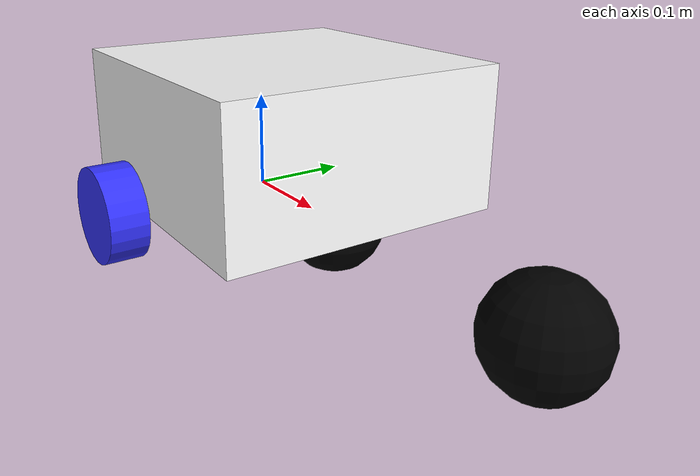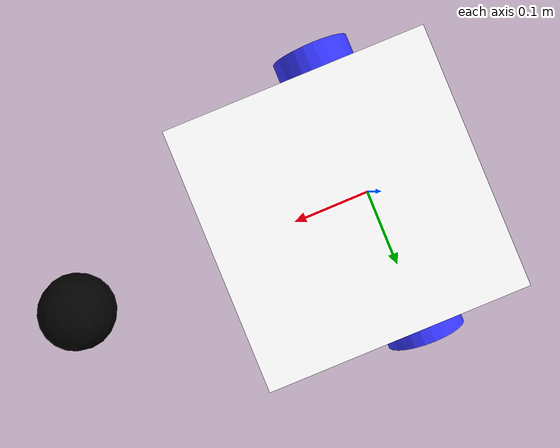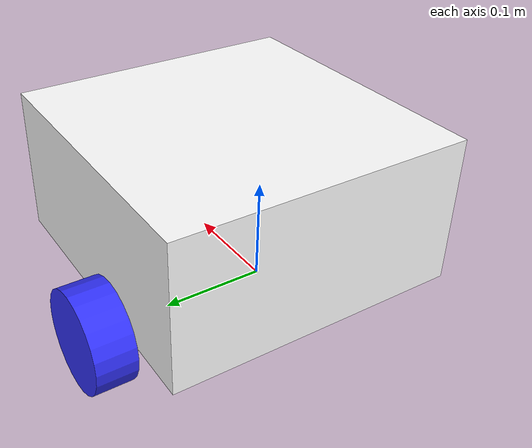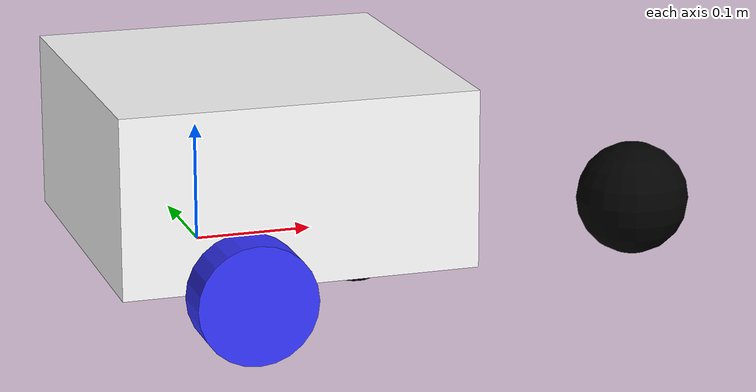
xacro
<?xml version="1.0"?>
<robot xmlns:xacro="http://www.ros.org/wiki/xacro">
    <xacro:include filename="inertial_macros.xacro" />

    <material name="white">
        <color rgba="1 1 1 1" />
    </material>
    <material name="orange">
        <color rgba="1 0.3 0.1 1" />
    </material>
    <material name="blue">
        <color rgba="0.2 0.2 1 1" />
    </material>
    <material name="black">
        <color rgba="0 0 0 1" />
    </material>

    <!-- BASE LINK -->

    <link name="base_link">

    </link>

    <!-- CHASSIS LINK -->

    <joint name="chassis_joint" type="fixed">
        <parent link="base_link" />
        <child link="chassis" />
        <origin xyz="-0.1 0 0" />
    </joint>

    <link name="chassis">
        <visual>
            <origin xyz="0.15 0 0.075" />
            <geometry>
                <box size="0.3 0.3 0.15" />
            </geometry>
            <material name="white" />
        </visual>
        <collision>
            <origin xyz="0.15 0 0.075" />
            <geometry>
                <box size="0.3 0.3 0.15" />
            </geometry>
        </collision>
        <xacro:inertial_box mass="0.5" x="0.3" y="0.3" z="0.15">
            <origin xyz="0.15 0 0.075" rpy="0 0 0" />
        </xacro:inertial_box>
    </link>

    <!-- LEFT WHEEL LINK -->
    <joint name="left_wheel_joint" type="continuous">
        <parent link="base_link" />
        <child link="left_wheel" />
        <origin xyz="0 0.175 0" rpy="-${pi/2} 0 0" />
        <axis xyz="0 0 1" />
    </joint>

    <link name="left_wheel">
        <visual>
            <geometry>
                <cylinder radius="0.05" length="0.04" />
            </geometry>
            <material name="blue" />
        </visual>
        <collision>
            <geometry>
                <cylinder radius="0.05" length="0.04" />
            </geometry>
        </collision>
        <xacro:inertial_cylinder mass="0.1" radius="0.05" length="0.04">
            <origin xyz="0 0 0" rpy="0 0 0" />
        </xacro:inertial_cylinder>
    </link>

    <!-- RIGHT WHEEL LINK -->
    <joint name="right_wheel_joint" type="continuous">
        <parent link="base_link" />
        <child link="right_wheel" />
        <origin xyz="0 -0.175 0" rpy="${pi/2} 0 0" />
        <axis xyz="0 0 -1" />
    </joint>

    <link name="right_wheel">
        <visual>
            <geometry>
                <cylinder radius="0.05" length="0.04" />
            </geometry>
            <material name="blue" />
        </visual>
        <collision>
            <geometry>
                <cylinder radius="0.05" length="0.04" />
            </geometry>
        </collision>
        <xacro:inertial_cylinder mass="0.1" radius="0.05" length="0.04">
            <origin xyz="0 0 0" rpy="0 0 0" />
        </xacro:inertial_cylinder>
    </link>

    <!-- CASTER WHEEL LINK -->
    <joint name="caster_wheel_joint" type="fixed">
        <parent link="chassis" />
        <child link="caster_wheel" />
        <origin xyz="0.24 0 0" />
    </joint>

    <link name="caster_wheel">
        <visual>
            <geometry>
                <sphere radius="0.05" />
            </geometry>
            <material name="black" />
        </visual>
        <collision>
            <geometry>
                <sphere radius="0.05" />
            </geometry>
        </collision>
        <xacro:inertial_sphere mass="0.1" radius="0.05">
            <origin xyz="0 0 0" rpy="0 0 0" />
        </xacro:inertial_sphere>
    </link>

    <!-- TEST Joint -->

    <joint name="joint1" type="continuous">
        <parent link="chassis" />
        <child link="test1" />
        <origin xyz="0.5 0 0" />
    </joint>

    <link name="test1">
        <visual>
            <geometry>
                <sphere radius="0.05" />
            </geometry>
            <material name="black" />
        </visual>
        <collision>
            <geometry>
                <sphere radius="0.05" />
            </geometry>
        </collision>
        <xacro:inertial_sphere mass="0.1" radius="0.05">
            <origin xyz="0 0 0" rpy="0 0 0" />
        </xacro:inertial_sphere>
    </link>
</robot>
